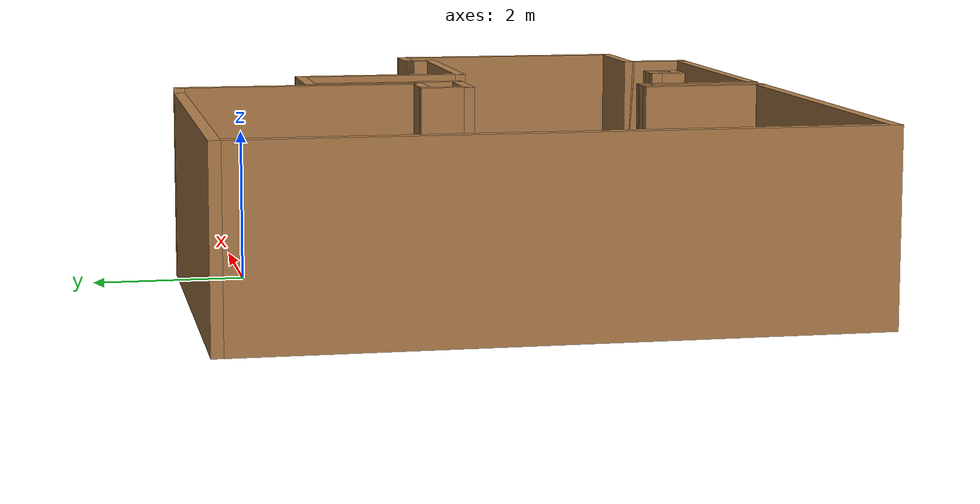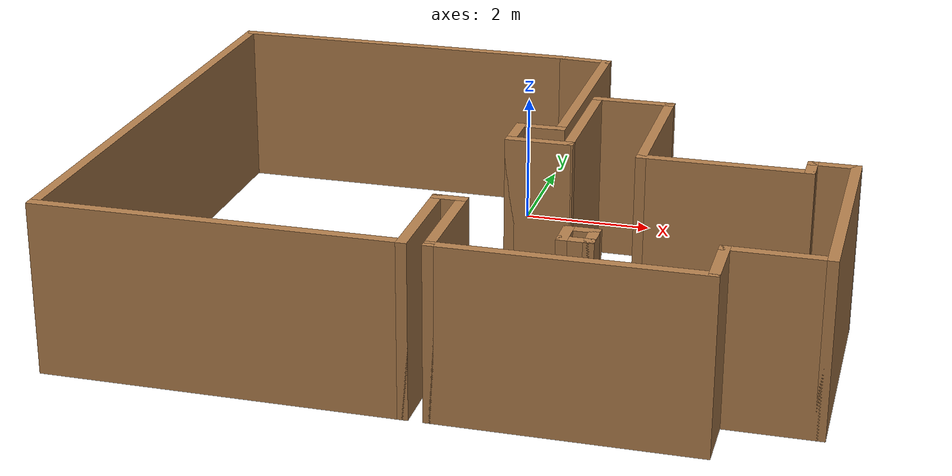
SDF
<?xml version='1.0'?>
<sdf version='1.6'>
  <model name='map_134'>
    <pose frame=''>0.179705 -3.25802 0 0 -0 0</pose>
    <link name='Wall_0'>
      <collision name='Wall_0_Collision'>
        <geometry>
          <box>
            <size>5.5 0.15 2.5</size>
          </box>
        </geometry>
        <pose frame=''>0 0 1.25 0 -0 0</pose>
      </collision>
      <visual name='Wall_0_Visual'>
        <pose frame=''>0 0 1.25 0 -0 0</pose>
        <geometry>
          <box>
            <size>5.5 0.15 2.5</size>
          </box>
        </geometry>
        <material>
          <script>
            <uri>file://media/materials/scripts/gazebo.material</uri>
            <name>Gazebo/Wood</name>
          </script>
          <ambient>1 1 1 1</ambient>
        </material>
        <meta>
          <layer>0</layer>
        </meta>
      </visual>
      <pose frame=''>-2.525 4.04759 0 0 -0 3.14159</pose>
    </link>
    <link name='Wall_1'>
      <collision name='Wall_1_Collision'>
        <geometry>
          <box>
            <size>8.25 0.15 2.5</size>
          </box>
        </geometry>
        <pose frame=''>0 0 1.25 0 -0 0</pose>
      </collision>
      <visual name='Wall_1_Visual'>
        <pose frame=''>0 0 1.25 0 -0 0</pose>
        <geometry>
          <box>
            <size>8.25 0.15 2.5</size>
          </box>
        </geometry>
        <material>
          <script>
            <uri>file://media/materials/scripts/gazebo.material</uri>
            <name>Gazebo/Wood</name>
          </script>
          <ambient>1 1 1 1</ambient>
        </material>
        <meta>
          <layer>0</layer>
        </meta>
      </visual>
      <pose frame=''>-5.2 -0.002411 0 0 -0 -1.5708</pose>
    </link>
    <link name='Wall_10'>
      <collision name='Wall_10_Collision'>
        <geometry>
          <box>
            <size>0.75 0.15 2.5</size>
          </box>
        </geometry>
        <pose frame=''>0 0 1.25 0 -0 0</pose>
      </collision>
      <visual name='Wall_10_Visual'>
        <pose frame=''>0 0 1.25 0 -0 0</pose>
        <geometry>
          <box>
            <size>0.75 0.15 2.5</size>
          </box>
        </geometry>
        <material>
          <script>
            <uri>file://media/materials/scripts/gazebo.material</uri>
            <name>Gazebo/Wood</name>
          </script>
          <ambient>1 1 1 1</ambient>
        </material>
        <meta>
          <layer>0</layer>
        </meta>
      </visual>
      <pose frame=''>4.9 0.147589 0 0 -0 3.14159</pose>
    </link>
    <link name='Wall_11'>
      <collision name='Wall_11_Collision'>
        <geometry>
          <box>
            <size>0.5 0.15 2.5</size>
          </box>
        </geometry>
        <pose frame=''>0 0 1.25 0 -0 0</pose>
      </collision>
      <visual name='Wall_11_Visual'>
        <pose frame=''>0 0 1.25 0 -0 0</pose>
        <geometry>
          <box>
            <size>0.5 0.15 2.5</size>
          </box>
        </geometry>
        <material>
          <script>
            <uri>file://media/materials/scripts/gazebo.material</uri>
            <name>Gazebo/Wood</name>
          </script>
          <ambient>1 1 1 1</ambient>
        </material>
        <meta>
          <layer>0</layer>
        </meta>
      </visual>
      <pose frame=''>4.6 -0.027411 0 0 -0 -1.5708</pose>
    </link>
    <link name='Wall_12'>
      <collision name='Wall_12_Collision'>
        <geometry>
          <box>
            <size>2.5 0.15 2.5</size>
          </box>
        </geometry>
        <pose frame=''>0 0 1.25 0 -0 0</pose>
      </collision>
      <visual name='Wall_12_Visual'>
        <pose frame=''>0 0 1.25 0 -0 0</pose>
        <geometry>
          <box>
            <size>2.5 0.15 2.5</size>
          </box>
        </geometry>
        <material>
          <script>
            <uri>file://media/materials/scripts/gazebo.material</uri>
            <name>Gazebo/Wood</name>
          </script>
          <ambient>1 1 1 1</ambient>
        </material>
        <meta>
          <layer>0</layer>
        </meta>
      </visual>
      <pose frame=''>3.425 -0.202411 0 0 -0 3.14159</pose>
    </link>
    <link name='Wall_13'>
      <collision name='Wall_13_Collision'>
        <geometry>
          <box>
            <size>2.5 0.15 2.5</size>
          </box>
        </geometry>
        <pose frame=''>0 0 1.25 0 -0 0</pose>
      </collision>
      <visual name='Wall_13_Visual'>
        <pose frame=''>0 0 1.25 0 -0 0</pose>
        <geometry>
          <box>
            <size>2.5 0.15 2.5</size>
          </box>
        </geometry>
        <material>
          <script>
            <uri>file://media/materials/scripts/gazebo.material</uri>
            <name>Gazebo/Wood</name>
          </script>
          <ambient>1 1 1 1</ambient>
        </material>
        <meta>
          <layer>0</layer>
        </meta>
      </visual>
      <pose frame=''>2.25 0.972589 0 0 -0 1.5708</pose>
    </link>
    <link name='Wall_14'>
      <collision name='Wall_14_Collision'>
        <geometry>
          <box>
            <size>1.25 0.15 2.5</size>
          </box>
        </geometry>
        <pose frame=''>0 0 1.25 0 -0 0</pose>
      </collision>
      <visual name='Wall_14_Visual'>
        <pose frame=''>0 0 1.25 0 -0 0</pose>
        <geometry>
          <box>
            <size>1.25 0.15 2.5</size>
          </box>
        </geometry>
        <material>
          <script>
            <uri>file://media/materials/scripts/gazebo.material</uri>
            <name>Gazebo/Wood</name>
          </script>
          <ambient>1 1 1 1</ambient>
        </material>
        <meta>
          <layer>0</layer>
        </meta>
      </visual>
      <pose frame=''>1.7 2.14759 0 0 -0 3.14159</pose>
    </link>
    <link name='Wall_2'>
      <collision name='Wall_2_Collision'>
        <geometry>
          <box>
            <size>5.25 0.15 2.5</size>
          </box>
        </geometry>
        <pose frame=''>0 0 1.25 0 -0 0</pose>
      </collision>
      <visual name='Wall_2_Visual'>
        <pose frame=''>0 0 1.25 0 -0 0</pose>
        <geometry>
          <box>
            <size>5.25 0.15 2.5</size>
          </box>
        </geometry>
        <material>
          <script>
            <uri>file://media/materials/scripts/gazebo.material</uri>
            <name>Gazebo/Wood</name>
          </script>
          <ambient>1 1 1 1</ambient>
        </material>
        <meta>
          <layer>0</layer>
        </meta>
      </visual>
      <pose frame=''>-2.65 -4.05241 0 0 -0 0</pose>
    </link>
    <link name='Wall_23'>
      <collision name='Wall_23_Collision'>
        <geometry>
          <box>
            <size>2.25 0.15 2.5</size>
          </box>
        </geometry>
        <pose frame=''>0 0 1.25 0 -0 0</pose>
      </collision>
      <visual name='Wall_23_Visual'>
        <pose frame=''>0 0 1.25 0 -0 0</pose>
        <geometry>
          <box>
            <size>2.25 0.15 2.5</size>
          </box>
        </geometry>
        <material>
          <script>
            <uri>file://media/materials/scripts/gazebo.material</uri>
            <name>Gazebo/Wood</name>
          </script>
          <ambient>1 1 1 1</ambient>
        </material>
        <meta>
          <layer>0</layer>
        </meta>
      </visual>
      <pose frame=''>1.15 1.09759 0 0 -0 -1.5708</pose>
    </link>
    <link name='Wall_24'>
      <collision name='Wall_24_Collision'>
        <geometry>
          <box>
            <size>1 0.15 2.5</size>
          </box>
        </geometry>
        <pose frame=''>0 0 1.25 0 -0 0</pose>
      </collision>
      <visual name='Wall_24_Visual'>
        <pose frame=''>0 0 1.25 0 -0 0</pose>
        <geometry>
          <box>
            <size>1 0.15 2.5</size>
          </box>
        </geometry>
        <material>
          <script>
            <uri>file://media/materials/scripts/gazebo.material</uri>
            <name>Gazebo/Wood</name>
          </script>
          <ambient>1 1 1 1</ambient>
        </material>
        <meta>
          <layer>0</layer>
        </meta>
      </visual>
      <pose frame=''>0.725 0.047589 0 0 -0 3.14159</pose>
    </link>
    <link name='Wall_25'>
      <collision name='Wall_25_Collision'>
        <geometry>
          <box>
            <size>0.75 0.15 2.5</size>
          </box>
        </geometry>
        <pose frame=''>0 0 1.25 0 -0 0</pose>
      </collision>
      <visual name='Wall_25_Visual'>
        <pose frame=''>0 0 1.25 0 -0 0</pose>
        <geometry>
          <box>
            <size>0.75 0.15 2.5</size>
          </box>
        </geometry>
        <material>
          <script>
            <uri>file://media/materials/scripts/gazebo.material</uri>
            <name>Gazebo/Wood</name>
          </script>
          <ambient>1 1 1 1</ambient>
        </material>
        <meta>
          <layer>0</layer>
        </meta>
      </visual>
      <pose frame=''>0.3 0.347589 0 0 -0 1.5708</pose>
    </link>
    <link name='Wall_26'>
      <collision name='Wall_26_Collision'>
        <geometry>
          <box>
            <size>0.75 0.15 2.5</size>
          </box>
        </geometry>
        <pose frame=''>0 0 1.25 0 -0 0</pose>
      </collision>
      <visual name='Wall_26_Visual'>
        <pose frame=''>0 0 1.25 0 -0 0</pose>
        <geometry>
          <box>
            <size>0.75 0.15 2.5</size>
          </box>
        </geometry>
        <material>
          <script>
            <uri>file://media/materials/scripts/gazebo.material</uri>
            <name>Gazebo/Wood</name>
          </script>
          <ambient>1 1 1 1</ambient>
        </material>
        <meta>
          <layer>0</layer>
        </meta>
      </visual>
      <pose frame=''>0.6 0.647589 0 0 -0 0</pose>
    </link>
    <link name='Wall_27'>
      <collision name='Wall_27_Collision'>
        <geometry>
          <box>
            <size>3.5 0.15 2.5</size>
          </box>
        </geometry>
        <pose frame=''>0 0 1.25 0 -0 0</pose>
      </collision>
      <visual name='Wall_27_Visual'>
        <pose frame=''>0 0 1.25 0 -0 0</pose>
        <geometry>
          <box>
            <size>3.5 0.15 2.5</size>
          </box>
        </geometry>
        <material>
          <script>
            <uri>file://media/materials/scripts/gazebo.material</uri>
            <name>Gazebo/Wood</name>
          </script>
          <ambient>1 1 1 1</ambient>
        </material>
        <meta>
          <layer>0</layer>
        </meta>
      </visual>
      <pose frame=''>0.9 2.32259 0 0 -0 1.5708</pose>
    </link>
    <link name='Wall_28'>
      <collision name='Wall_28_Collision'>
        <geometry>
          <box>
            <size>0.901665 0.15 2.5</size>
          </box>
        </geometry>
        <pose frame=''>0 0 1.25 0 -0 0</pose>
      </collision>
      <visual name='Wall_28_Visual'>
        <pose frame=''>0 0 1.25 0 -0 0</pose>
        <geometry>
          <box>
            <size>0.901665 0.15 2.5</size>
          </box>
        </geometry>
        <material>
          <script>
            <uri>file://media/materials/scripts/gazebo.material</uri>
            <name>Gazebo/Wood</name>
          </script>
          <ambient>1 1 1 1</ambient>
        </material>
        <meta>
          <layer>0</layer>
        </meta>
      </visual>
      <pose frame=''>0.525 4.02259 0 0 -0 3.07502</pose>
    </link>
    <link name='Wall_3'>
      <collision name='Wall_3_Collision'>
        <geometry>
          <box>
            <size>1.75 0.15 2.5</size>
          </box>
        </geometry>
        <pose frame=''>0 0 1.25 0 -0 0</pose>
      </collision>
      <visual name='Wall_3_Visual'>
        <pose frame=''>0 0 1.25 0 -0 0</pose>
        <geometry>
          <box>
            <size>1.75 0.15 2.5</size>
          </box>
        </geometry>
        <material>
          <script>
            <uri>file://media/materials/scripts/gazebo.material</uri>
            <name>Gazebo/Wood</name>
          </script>
          <ambient>1 1 1 1</ambient>
        </material>
        <meta>
          <layer>0</layer>
        </meta>
      </visual>
      <pose frame=''>-0.1 -3.25241 0 0 -0 1.5708</pose>
    </link>
    <link name='Wall_30'>
      <collision name='Wall_30_Collision'>
        <geometry>
          <box>
            <size>0.5 0.15 2.5</size>
          </box>
        </geometry>
        <pose frame=''>0 0 1.25 0 -0 0</pose>
      </collision>
      <visual name='Wall_30_Visual'>
        <pose frame=''>0 0 1.25 0 -0 0</pose>
        <geometry>
          <box>
            <size>0.5 0.15 2.5</size>
          </box>
        </geometry>
        <material>
          <script>
            <uri>file://media/materials/scripts/gazebo.material</uri>
            <name>Gazebo/Wood</name>
          </script>
          <ambient>1 1 1 1</ambient>
        </material>
        <meta>
          <layer>0</layer>
        </meta>
      </visual>
      <pose frame=''>1.82581 -3.25626 0 0 -0 -1.5708</pose>
    </link>
    <link name='Wall_33'>
      <collision name='Wall_33_Collision'>
        <geometry>
          <box>
            <size>0.5 0.15 2.5</size>
          </box>
        </geometry>
        <pose frame=''>0 0 1.25 0 -0 0</pose>
      </collision>
      <visual name='Wall_33_Visual'>
        <pose frame=''>0 0 1.25 0 -0 0</pose>
        <geometry>
          <box>
            <size>0.5 0.15 2.5</size>
          </box>
        </geometry>
        <material>
          <script>
            <uri>file://media/materials/scripts/gazebo.material</uri>
            <name>Gazebo/Wood</name>
          </script>
          <ambient>1 1 1 1</ambient>
        </material>
        <meta>
          <layer>0</layer>
        </meta>
      </visual>
      <pose frame=''>2.00081 -3.43126 0 0 -0 0</pose>
    </link>
    <link name='Wall_34'>
      <collision name='Wall_34_Collision'>
        <geometry>
          <box>
            <size>0.5 0.15 2.5</size>
          </box>
        </geometry>
        <pose frame=''>0 0 1.25 0 -0 0</pose>
      </collision>
      <visual name='Wall_34_Visual'>
        <pose frame=''>0 0 1.25 0 -0 0</pose>
        <geometry>
          <box>
            <size>0.5 0.15 2.5</size>
          </box>
        </geometry>
        <material>
          <script>
            <uri>file://media/materials/scripts/gazebo.material</uri>
            <name>Gazebo/Wood</name>
          </script>
          <ambient>1 1 1 1</ambient>
        </material>
        <meta>
          <layer>0</layer>
        </meta>
      </visual>
      <pose frame=''>2.17581 -3.25626 0 0 -0 1.5708</pose>
    </link>
    <link name='Wall_35'>
      <collision name='Wall_35_Collision'>
        <geometry>
          <box>
            <size>0.5 0.15 2.5</size>
          </box>
        </geometry>
        <pose frame=''>0 0 1.25 0 -0 0</pose>
      </collision>
      <visual name='Wall_35_Visual'>
        <pose frame=''>0 0 1.25 0 -0 0</pose>
        <geometry>
          <box>
            <size>0.5 0.15 2.5</size>
          </box>
        </geometry>
        <material>
          <script>
            <uri>file://media/materials/scripts/gazebo.material</uri>
            <name>Gazebo/Wood</name>
          </script>
          <ambient>1 1 1 1</ambient>
        </material>
        <meta>
          <layer>0</layer>
        </meta>
      </visual>
      <pose frame=''>2.00081 -3.08127 0 0 -0 3.14159</pose>
    </link>
    <link name='Wall_4'>
      <collision name='Wall_4_Collision'>
        <geometry>
          <box>
            <size>0.5 0.15 2.5</size>
          </box>
        </geometry>
        <pose frame=''>0 0 1.25 0 -0 0</pose>
      </collision>
      <visual name='Wall_4_Visual'>
        <pose frame=''>0 0 1.25 0 -0 0</pose>
        <geometry>
          <box>
            <size>0.5 0.15 2.5</size>
          </box>
        </geometry>
        <material>
          <script>
            <uri>file://media/materials/scripts/gazebo.material</uri>
            <name>Gazebo/Wood</name>
          </script>
          <ambient>1 1 1 1</ambient>
        </material>
        <meta>
          <layer>0</layer>
        </meta>
      </visual>
      <pose frame=''>0.075 -2.45241 0 0 -0 0</pose>
    </link>
    <link name='Wall_5'>
      <collision name='Wall_5_Collision'>
        <geometry>
          <box>
            <size>1.75 0.15 2.5</size>
          </box>
        </geometry>
        <pose frame=''>0 0 1.25 0 -0 0</pose>
      </collision>
      <visual name='Wall_5_Visual'>
        <pose frame=''>0 0 1.25 0 -0 0</pose>
        <geometry>
          <box>
            <size>1.75 0.15 2.5</size>
          </box>
        </geometry>
        <material>
          <script>
            <uri>file://media/materials/scripts/gazebo.material</uri>
            <name>Gazebo/Wood</name>
          </script>
          <ambient>1 1 1 1</ambient>
        </material>
        <meta>
          <layer>0</layer>
        </meta>
      </visual>
      <pose frame=''>0.25 -3.25241 0 0 -0 -1.5708</pose>
    </link>
    <link name='Wall_6'>
      <collision name='Wall_6_Collision'>
        <geometry>
          <box>
            <size>3.75 0.15 2.5</size>
          </box>
        </geometry>
        <pose frame=''>0 0 1.25 0 -0 0</pose>
      </collision>
      <visual name='Wall_6_Visual'>
        <pose frame=''>0 0 1.25 0 -0 0</pose>
        <geometry>
          <box>
            <size>3.75 0.15 2.5</size>
          </box>
        </geometry>
        <material>
          <script>
            <uri>file://media/materials/scripts/gazebo.material</uri>
            <name>Gazebo/Wood</name>
          </script>
          <ambient>1 1 1 1</ambient>
        </material>
        <meta>
          <layer>0</layer>
        </meta>
      </visual>
      <pose frame=''>2.05 -4.05241 0 0 -0 0</pose>
    </link>
    <link name='Wall_7'>
      <collision name='Wall_7_Collision'>
        <geometry>
          <box>
            <size>1 0.15 2.5</size>
          </box>
        </geometry>
        <pose frame=''>0 0 1.25 0 -0 0</pose>
      </collision>
      <visual name='Wall_7_Visual'>
        <pose frame=''>0 0 1.25 0 -0 0</pose>
        <geometry>
          <box>
            <size>1 0.15 2.5</size>
          </box>
        </geometry>
        <material>
          <script>
            <uri>file://media/materials/scripts/gazebo.material</uri>
            <name>Gazebo/Wood</name>
          </script>
          <ambient>1 1 1 1</ambient>
        </material>
        <meta>
          <layer>0</layer>
        </meta>
      </visual>
      <pose frame=''>3.85 -3.62741 0 0 -0 1.5708</pose>
    </link>
    <link name='Wall_8'>
      <collision name='Wall_8_Collision'>
        <geometry>
          <box>
            <size>1.5 0.15 2.5</size>
          </box>
        </geometry>
        <pose frame=''>0 0 1.25 0 -0 0</pose>
      </collision>
      <visual name='Wall_8_Visual'>
        <pose frame=''>0 0 1.25 0 -0 0</pose>
        <geometry>
          <box>
            <size>1.5 0.15 2.5</size>
          </box>
        </geometry>
        <material>
          <script>
            <uri>file://media/materials/scripts/gazebo.material</uri>
            <name>Gazebo/Wood</name>
          </script>
          <ambient>1 1 1 1</ambient>
        </material>
        <meta>
          <layer>0</layer>
        </meta>
      </visual>
      <pose frame=''>4.525 -3.20241 0 0 -0 0</pose>
    </link>
    <link name='Wall_9'>
      <collision name='Wall_9_Collision'>
        <geometry>
          <box>
            <size>3.5 0.15 2.5</size>
          </box>
        </geometry>
        <pose frame=''>0 0 1.25 0 -0 0</pose>
      </collision>
      <visual name='Wall_9_Visual'>
        <pose frame=''>0 0 1.25 0 -0 0</pose>
        <geometry>
          <box>
            <size>3.5 0.15 2.5</size>
          </box>
        </geometry>
        <material>
          <script>
            <uri>file://media/materials/scripts/gazebo.material</uri>
            <name>Gazebo/Wood</name>
          </script>
          <ambient>1 1 1 1</ambient>
        </material>
        <meta>
          <layer>0</layer>
        </meta>
      </visual>
      <pose frame=''>5.2 -1.52741 0 0 -0 1.5708</pose>
    </link>
    <static>1</static>
  </model>
</sdf>
